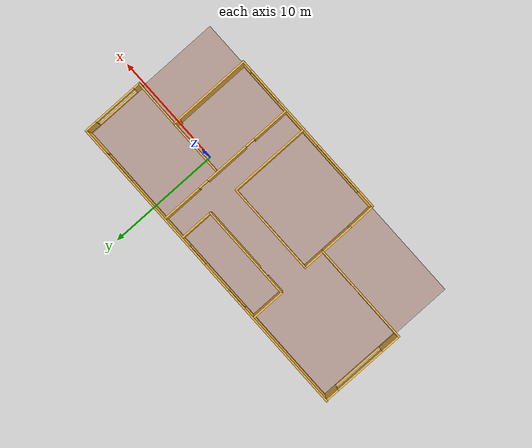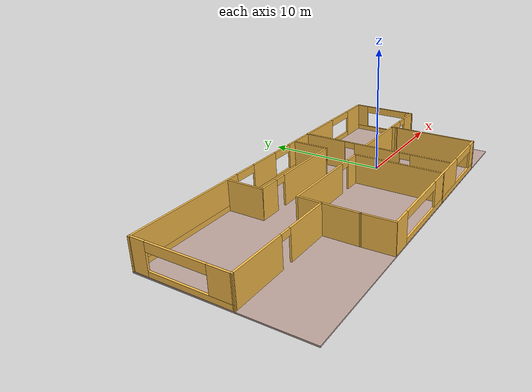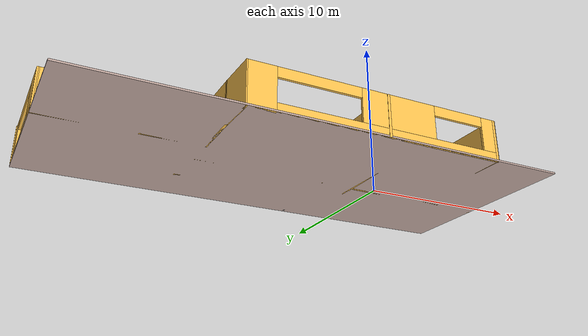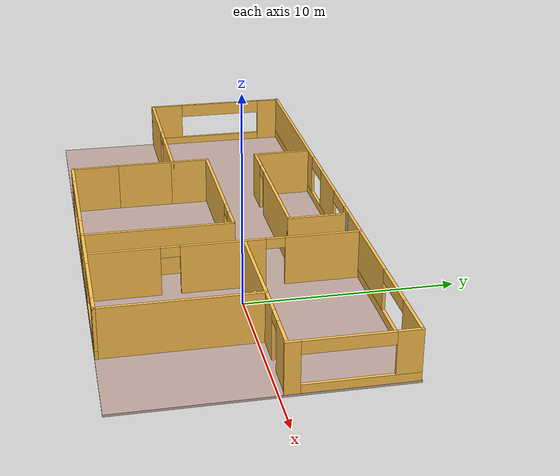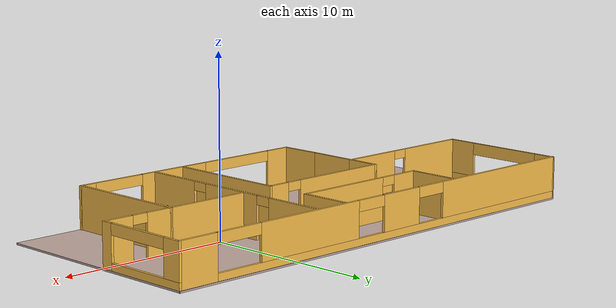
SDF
<?xml version='1.0'?>
<sdf version='1.6'>
  <model name='Untitled'>
    <pose frame=''>-6.29296 -0.528199 0 0 -0 0</pose>
    <link name='Floor_0'>
      <collision name='Floor_0_Collision'>
        <geometry>
          <box>
            <size>28.305 12.9233 0.1</size>
          </box>
        </geometry>
        <pose frame=''>0 0 0.05 0 -0 0</pose>
      </collision>
      <visual name='Floor_0_Visual'>
        <pose frame=''>0 0 0.05 0 -0 0</pose>
        <geometry>
          <box>
            <size>28.305 12.9233 0.1</size>
          </box>
        </geometry>
        <material>
          <script>
            <uri>file://media/materials/scripts/gazebo.material</uri>
            <name>Gazebo/Grey</name>
          </script>
          <ambient>0.760784 0.662745 0.627451 1</ambient>
        </material>
        <meta>
          <layer>0</layer>
        </meta>
      </visual>
      <pose frame=''>0 3.6e-05 0 0 -0 0</pose>
    </link>
    <link name='Wall_46'>
      <pose frame=''>2.42069 -6.37368 0 0 -0 0</pose>
      <visual name='Wall_46_Visual_0'>
        <pose frame=''>-6.82393 0 1.25 0 -0 0</pose>
        <geometry>
          <box>
            <size>1.60214 0.15 2.5</size>
          </box>
        </geometry>
        <material>
          <script>
            <uri>file://media/materials/scripts/gazebo.material</uri>
            <name>Gazebo/Grey</name>
          </script>
          <ambient>1 0.764706 0.305882 1</ambient>
        </material>
        <meta>
          <layer>0</layer>
        </meta>
      </visual>
      <collision name='Wall_46_Collision_0'>
        <geometry>
          <box>
            <size>1.60214 0.15 2.5</size>
          </box>
        </geometry>
        <pose frame=''>-6.82393 0 1.25 0 -0 0</pose>
      </collision>
      <visual name='Wall_46_Visual_1'>
        <pose frame=''>0.801071 0 0.25 0 -0 0</pose>
        <geometry>
          <box>
            <size>13.6479 0.15 0.5</size>
          </box>
        </geometry>
        <material>
          <script>
            <uri>file://media/materials/scripts/gazebo.material</uri>
            <name>Gazebo/Grey</name>
          </script>
          <ambient>1 0.764706 0.305882 1</ambient>
        </material>
        <meta>
          <layer>0</layer>
        </meta>
      </visual>
      <collision name='Wall_46_Collision_1'>
        <geometry>
          <box>
            <size>13.6479 0.15 0.5</size>
          </box>
        </geometry>
        <pose frame=''>0.801071 0 0.25 0 -0 0</pose>
      </collision>
      <visual name='Wall_46_Visual_2'>
        <pose frame=''>1.10585 0 1.5 0 -0 0</pose>
        <geometry>
          <box>
            <size>4.57742 0.15 2</size>
          </box>
        </geometry>
        <material>
          <script>
            <uri>file://media/materials/scripts/gazebo.material</uri>
            <name>Gazebo/Grey</name>
          </script>
          <ambient>1 0.764706 0.305882 1</ambient>
        </material>
        <meta>
          <layer>0</layer>
        </meta>
      </visual>
      <collision name='Wall_46_Collision_2'>
        <geometry>
          <box>
            <size>4.57742 0.15 2</size>
          </box>
        </geometry>
        <pose frame=''>1.10585 0 1.5 0 -0 0</pose>
      </collision>
      <visual name='Wall_46_Visual_3'>
        <pose frame=''>7.11928 0 1.5 0 -0 0</pose>
        <geometry>
          <box>
            <size>1.01143 0.15 2</size>
          </box>
        </geometry>
        <material>
          <script>
            <uri>file://media/materials/scripts/gazebo.material</uri>
            <name>Gazebo/Grey</name>
          </script>
          <ambient>1 0.764706 0.305882 1</ambient>
        </material>
        <meta>
          <layer>0</layer>
        </meta>
      </visual>
      <collision name='Wall_46_Collision_3'>
        <geometry>
          <box>
            <size>1.01143 0.15 2</size>
          </box>
        </geometry>
        <pose frame=''>7.11928 0 1.5 0 -0 0</pose>
      </collision>
      <visual name='Wall_46_Visual_4'>
        <pose frame=''>-3.60286 0 2.2 0 -0 0</pose>
        <geometry>
          <box>
            <size>4.84 0.15 0.6</size>
          </box>
        </geometry>
        <material>
          <script>
            <uri>file://media/materials/scripts/gazebo.material</uri>
            <name>Gazebo/Grey</name>
          </script>
          <ambient>1 0.764706 0.305882 1</ambient>
        </material>
        <meta>
          <layer>0</layer>
        </meta>
      </visual>
      <collision name='Wall_46_Collision_4'>
        <geometry>
          <box>
            <size>4.84 0.15 0.6</size>
          </box>
        </geometry>
        <pose frame=''>-3.60286 0 2.2 0 -0 0</pose>
      </collision>
      <visual name='Wall_46_Visual_5'>
        <pose frame=''>5.00407 0 2.2 0 -0 0</pose>
        <geometry>
          <box>
            <size>3.219 0.15 0.6</size>
          </box>
        </geometry>
        <material>
          <script>
            <uri>file://media/materials/scripts/gazebo.material</uri>
            <name>Gazebo/Grey</name>
          </script>
          <ambient>1 0.764706 0.305882 1</ambient>
        </material>
        <meta>
          <layer>0</layer>
        </meta>
      </visual>
      <collision name='Wall_46_Collision_5'>
        <geometry>
          <box>
            <size>3.219 0.15 0.6</size>
          </box>
        </geometry>
        <pose frame=''>5.00407 0 2.2 0 -0 0</pose>
      </collision>
    </link>
    <link name='Wall_47'>
      <collision name='Wall_47_Collision'>
        <geometry>
          <box>
            <size>7.38746 0.15 2.5</size>
          </box>
        </geometry>
        <pose frame=''>0 0 1.25 0 -0 0</pose>
      </collision>
      <visual name='Wall_47_Visual'>
        <pose frame=''>0 0 1.25 0 -0 0</pose>
        <geometry>
          <box>
            <size>7.38746 0.15 2.5</size>
          </box>
        </geometry>
        <material>
          <script>
            <uri>file://media/materials/scripts/gazebo.material</uri>
            <name>Gazebo/Grey</name>
          </script>
          <ambient>1 0.764706 0.305882 1</ambient>
        </material>
        <meta>
          <layer>0</layer>
        </meta>
      </visual>
      <pose frame=''>9.92644 -2.75503 0 0 -0 1.57184</pose>
    </link>
    <link name='Wall_48'>
      <pose frame=''>11.9768 0.843396 0 0 0 -0.009847</pose>
      <visual name='Wall_48_Visual_0'>
        <pose frame=''>-1.31659 0 1.25 0 -0 0</pose>
        <geometry>
          <box>
            <size>1.62527 0.15 2.5</size>
          </box>
        </geometry>
        <material>
          <script>
            <uri>file://media/materials/scripts/gazebo.material</uri>
            <name>Gazebo/Grey</name>
          </script>
          <ambient>1 0.764706 0.305882 1</ambient>
        </material>
        <meta>
          <layer>0</layer>
        </meta>
      </visual>
      <collision name='Wall_48_Collision_0'>
        <geometry>
          <box>
            <size>1.62527 0.15 2.5</size>
          </box>
        </geometry>
        <pose frame=''>-1.31659 0 1.25 0 -0 0</pose>
      </collision>
      <visual name='Wall_48_Visual_1'>
        <pose frame=''>1.26263 0 1.25 0 -0 0</pose>
        <geometry>
          <box>
            <size>1.73318 0.15 2.5</size>
          </box>
        </geometry>
        <material>
          <script>
            <uri>file://media/materials/scripts/gazebo.material</uri>
            <name>Gazebo/Grey</name>
          </script>
          <ambient>1 0.764706 0.305882 1</ambient>
        </material>
        <meta>
          <layer>0</layer>
        </meta>
      </visual>
      <collision name='Wall_48_Collision_1'>
        <geometry>
          <box>
            <size>1.73318 0.15 2.5</size>
          </box>
        </geometry>
        <pose frame=''>1.26263 0 1.25 0 -0 0</pose>
      </collision>
      <visual name='Wall_48_Visual_2'>
        <pose frame=''>-0.053953 0 2.25 0 -0 0</pose>
        <geometry>
          <box>
            <size>0.9 0.15 0.5</size>
          </box>
        </geometry>
        <material>
          <script>
            <uri>file://media/materials/scripts/gazebo.material</uri>
            <name>Gazebo/Grey</name>
          </script>
          <ambient>1 0.764706 0.305882 1</ambient>
        </material>
        <meta>
          <layer>0</layer>
        </meta>
      </visual>
      <collision name='Wall_48_Collision_2'>
        <geometry>
          <box>
            <size>0.9 0.15 0.5</size>
          </box>
        </geometry>
        <pose frame=''>-0.053953 0 2.25 0 -0 0</pose>
      </collision>
    </link>
    <link name='Wall_49'>
      <pose frame=''>14.0744 3.56455 0 0 -0 1.56971</pose>
      <visual name='Wall_49_Visual_0'>
        <pose frame=''>-2.51549 0 1.25 0 -0 0</pose>
        <geometry>
          <box>
            <size>0.682829 0.15 2.5</size>
          </box>
        </geometry>
        <material>
          <script>
            <uri>file://media/materials/scripts/gazebo.material</uri>
            <name>Gazebo/Grey</name>
          </script>
          <ambient>1 0.764706 0.305882 1</ambient>
        </material>
        <meta>
          <layer>0</layer>
        </meta>
      </visual>
      <collision name='Wall_49_Collision_0'>
        <geometry>
          <box>
            <size>0.682829 0.15 2.5</size>
          </box>
        </geometry>
        <pose frame=''>-2.51549 0 1.25 0 -0 0</pose>
      </collision>
      <visual name='Wall_49_Visual_1'>
        <pose frame=''>0.341415 0 0.25 0 -0 0</pose>
        <geometry>
          <box>
            <size>5.03099 0.15 0.5</size>
          </box>
        </geometry>
        <material>
          <script>
            <uri>file://media/materials/scripts/gazebo.material</uri>
            <name>Gazebo/Grey</name>
          </script>
          <ambient>1 0.764706 0.305882 1</ambient>
        </material>
        <meta>
          <layer>0</layer>
        </meta>
      </visual>
      <collision name='Wall_49_Collision_1'>
        <geometry>
          <box>
            <size>5.03099 0.15 0.5</size>
          </box>
        </geometry>
        <pose frame=''>0.341415 0 0.25 0 -0 0</pose>
      </collision>
      <visual name='Wall_49_Visual_2'>
        <pose frame=''>2.29942 0 1.5 0 -0 0</pose>
        <geometry>
          <box>
            <size>1.11498 0.15 2</size>
          </box>
        </geometry>
        <material>
          <script>
            <uri>file://media/materials/scripts/gazebo.material</uri>
            <name>Gazebo/Grey</name>
          </script>
          <ambient>1 0.764706 0.305882 1</ambient>
        </material>
        <meta>
          <layer>0</layer>
        </meta>
      </visual>
      <collision name='Wall_49_Collision_2'>
        <geometry>
          <box>
            <size>1.11498 0.15 2</size>
          </box>
        </geometry>
        <pose frame=''>2.29942 0 1.5 0 -0 0</pose>
      </collision>
      <visual name='Wall_49_Visual_3'>
        <pose frame=''>-0.216078 0 2.2 0 -0 0</pose>
        <geometry>
          <box>
            <size>3.916 0.15 0.6</size>
          </box>
        </geometry>
        <material>
          <script>
            <uri>file://media/materials/scripts/gazebo.material</uri>
            <name>Gazebo/Grey</name>
          </script>
          <ambient>1 0.764706 0.305882 1</ambient>
        </material>
        <meta>
          <layer>0</layer>
        </meta>
      </visual>
      <collision name='Wall_49_Collision_3'>
        <geometry>
          <box>
            <size>3.916 0.15 0.6</size>
          </box>
        </geometry>
        <pose frame=''>-0.216078 0 2.2 0 -0 0</pose>
      </collision>
    </link>
    <link name='Wall_50'>
      <pose frame=''>-0.023072 6.3664 0 0 -0 3.14017</pose>
      <visual name='Wall_50_Visual_0'>
        <pose frame=''>-12.9423 0 1.25 0 -0 0</pose>
        <geometry>
          <box>
            <size>2.37332 0.15 2.5</size>
          </box>
        </geometry>
        <material>
          <script>
            <uri>file://media/materials/scripts/gazebo.material</uri>
            <name>Gazebo/Grey</name>
          </script>
          <ambient>1 0.764706 0.305882 1</ambient>
        </material>
        <meta>
          <layer>0</layer>
        </meta>
      </visual>
      <collision name='Wall_50_Collision_0'>
        <geometry>
          <box>
            <size>2.37332 0.15 2.5</size>
          </box>
        </geometry>
        <pose frame=''>-12.9423 0 1.25 0 -0 0</pose>
      </collision>
      <visual name='Wall_50_Visual_1'>
        <pose frame=''>1.18666 0 0.25 0 -0 0</pose>
        <geometry>
          <box>
            <size>25.8846 0.15 0.5</size>
          </box>
        </geometry>
        <material>
          <script>
            <uri>file://media/materials/scripts/gazebo.material</uri>
            <name>Gazebo/Grey</name>
          </script>
          <ambient>1 0.764706 0.305882 1</ambient>
        </material>
        <meta>
          <layer>0</layer>
        </meta>
      </visual>
      <collision name='Wall_50_Collision_1'>
        <geometry>
          <box>
            <size>25.8846 0.15 0.5</size>
          </box>
        </geometry>
        <pose frame=''>1.18666 0 0.25 0 -0 0</pose>
      </collision>
      <visual name='Wall_50_Visual_2'>
        <pose frame=''>-5.48965 0 1.5 0 -0 0</pose>
        <geometry>
          <box>
            <size>6.83803 0.15 2</size>
          </box>
        </geometry>
        <material>
          <script>
            <uri>file://media/materials/scripts/gazebo.material</uri>
            <name>Gazebo/Grey</name>
          </script>
          <ambient>1 0.764706 0.305882 1</ambient>
        </material>
        <meta>
          <layer>0</layer>
        </meta>
      </visual>
      <collision name='Wall_50_Collision_2'>
        <geometry>
          <box>
            <size>6.83803 0.15 2</size>
          </box>
        </geometry>
        <pose frame=''>-5.48965 0 1.5 0 -0 0</pose>
      </collision>
      <visual name='Wall_50_Visual_3'>
        <pose frame=''>1.1823 0 1.5 0 -0 0</pose>
        <geometry>
          <box>
            <size>2.70586 0.15 2</size>
          </box>
        </geometry>
        <material>
          <script>
            <uri>file://media/materials/scripts/gazebo.material</uri>
            <name>Gazebo/Grey</name>
          </script>
          <ambient>1 0.764706 0.305882 1</ambient>
        </material>
        <meta>
          <layer>0</layer>
        </meta>
      </visual>
      <collision name='Wall_50_Collision_3'>
        <geometry>
          <box>
            <size>2.70586 0.15 2</size>
          </box>
        </geometry>
        <pose frame=''>1.1823 0 1.5 0 -0 0</pose>
      </collision>
      <visual name='Wall_50_Visual_4'>
        <pose frame=''>9.2821 0 1.5 0 -0 0</pose>
        <geometry>
          <box>
            <size>9.69375 0.15 2</size>
          </box>
        </geometry>
        <material>
          <script>
            <uri>file://media/materials/scripts/gazebo.material</uri>
            <name>Gazebo/Grey</name>
          </script>
          <ambient>1 0.764706 0.305882 1</ambient>
        </material>
        <meta>
          <layer>0</layer>
        </meta>
      </visual>
      <collision name='Wall_50_Collision_4'>
        <geometry>
          <box>
            <size>9.69375 0.15 2</size>
          </box>
        </geometry>
        <pose frame=''>9.2821 0 1.5 0 -0 0</pose>
      </collision>
      <visual name='Wall_50_Visual_5'>
        <pose frame=''>-10.3322 0 2.2 0 -0 0</pose>
        <geometry>
          <box>
            <size>2.847 0.15 0.6</size>
          </box>
        </geometry>
        <material>
          <script>
            <uri>file://media/materials/scripts/gazebo.material</uri>
            <name>Gazebo/Grey</name>
          </script>
          <ambient>1 0.764706 0.305882 1</ambient>
        </material>
        <meta>
          <layer>0</layer>
        </meta>
      </visual>
      <collision name='Wall_50_Collision_5'>
        <geometry>
          <box>
            <size>2.847 0.15 0.6</size>
          </box>
        </geometry>
        <pose frame=''>-10.3322 0 2.2 0 -0 0</pose>
      </collision>
      <visual name='Wall_50_Visual_6'>
        <pose frame=''>-1.12063 0 2.2 0 -0 0</pose>
        <geometry>
          <box>
            <size>1.9 0.15 0.6</size>
          </box>
        </geometry>
        <material>
          <script>
            <uri>file://media/materials/scripts/gazebo.material</uri>
            <name>Gazebo/Grey</name>
          </script>
          <ambient>1 0.764706 0.305882 1</ambient>
        </material>
        <meta>
          <layer>0</layer>
        </meta>
      </visual>
      <collision name='Wall_50_Collision_6'>
        <geometry>
          <box>
            <size>1.9 0.15 0.6</size>
          </box>
        </geometry>
        <pose frame=''>-1.12063 0 2.2 0 -0 0</pose>
      </collision>
      <visual name='Wall_50_Visual_7'>
        <pose frame=''>3.48523 0 2.2 0 -0 0</pose>
        <geometry>
          <box>
            <size>1.9 0.15 0.6</size>
          </box>
        </geometry>
        <material>
          <script>
            <uri>file://media/materials/scripts/gazebo.material</uri>
            <name>Gazebo/Grey</name>
          </script>
          <ambient>1 0.764706 0.305882 1</ambient>
        </material>
        <meta>
          <layer>0</layer>
        </meta>
      </visual>
      <collision name='Wall_50_Collision_7'>
        <geometry>
          <box>
            <size>1.9 0.15 0.6</size>
          </box>
        </geometry>
        <pose frame=''>3.48523 0 2.2 0 -0 0</pose>
      </collision>
    </link>
    <link name='Wall_51'>
      <pose frame=''>-14.0538 2.6248 0 0 0 -1.57698</pose>
      <visual name='Wall_51_Visual_0'>
        <pose frame=''>-3.19315 0 1.25 0 -0 0</pose>
        <geometry>
          <box>
            <size>1.28692 0.15 2.5</size>
          </box>
        </geometry>
        <material>
          <script>
            <uri>file://media/materials/scripts/gazebo.material</uri>
            <name>Gazebo/Grey</name>
          </script>
          <ambient>1 0.764706 0.305882 1</ambient>
        </material>
        <meta>
          <layer>0</layer>
        </meta>
      </visual>
      <collision name='Wall_51_Collision_0'>
        <geometry>
          <box>
            <size>1.28692 0.15 2.5</size>
          </box>
        </geometry>
        <pose frame=''>-3.19315 0 1.25 0 -0 0</pose>
      </collision>
      <visual name='Wall_51_Visual_1'>
        <pose frame=''>0.64346 0 0.25 0 -0 0</pose>
        <geometry>
          <box>
            <size>6.38629 0.15 0.5</size>
          </box>
        </geometry>
        <material>
          <script>
            <uri>file://media/materials/scripts/gazebo.material</uri>
            <name>Gazebo/Grey</name>
          </script>
          <ambient>1 0.764706 0.305882 1</ambient>
        </material>
        <meta>
          <layer>0</layer>
        </meta>
      </visual>
      <collision name='Wall_51_Collision_1'>
        <geometry>
          <box>
            <size>6.38629 0.15 0.5</size>
          </box>
        </geometry>
        <pose frame=''>0.64346 0 0.25 0 -0 0</pose>
      </collision>
      <visual name='Wall_51_Visual_2'>
        <pose frame=''>2.93846 0 1.5 0 -0 0</pose>
        <geometry>
          <box>
            <size>1.79629 0.15 2</size>
          </box>
        </geometry>
        <material>
          <script>
            <uri>file://media/materials/scripts/gazebo.material</uri>
            <name>Gazebo/Grey</name>
          </script>
          <ambient>1 0.764706 0.305882 1</ambient>
        </material>
        <meta>
          <layer>0</layer>
        </meta>
      </visual>
      <collision name='Wall_51_Collision_2'>
        <geometry>
          <box>
            <size>1.79629 0.15 2</size>
          </box>
        </geometry>
        <pose frame=''>2.93846 0 1.5 0 -0 0</pose>
      </collision>
      <visual name='Wall_51_Visual_3'>
        <pose frame=''>-0.254685 0 2.15 0 -0 0</pose>
        <geometry>
          <box>
            <size>4.59 0.15 0.7</size>
          </box>
        </geometry>
        <material>
          <script>
            <uri>file://media/materials/scripts/gazebo.material</uri>
            <name>Gazebo/Grey</name>
          </script>
          <ambient>1 0.764706 0.305882 1</ambient>
        </material>
        <meta>
          <layer>0</layer>
        </meta>
      </visual>
      <collision name='Wall_51_Collision_3'>
        <geometry>
          <box>
            <size>4.59 0.15 0.7</size>
          </box>
        </geometry>
        <pose frame=''>-0.254685 0 2.15 0 -0 0</pose>
      </collision>
    </link>
    <link name='Wall_63'>
      <collision name='Wall_63_Collision'>
        <geometry>
          <box>
            <size>0.225572 0.15 2.5</size>
          </box>
        </geometry>
        <pose frame=''>0 0 1.25 0 -0 0</pose>
      </collision>
      <visual name='Wall_63_Visual'>
        <pose frame=''>0 0 1.25 0 -0 0</pose>
        <geometry>
          <box>
            <size>0.225572 0.15 2.5</size>
          </box>
        </geometry>
        <material>
          <script>
            <uri>file://media/materials/scripts/gazebo.material</uri>
            <name>Gazebo/Grey</name>
          </script>
          <ambient>1 0.764706 0.305882 1</ambient>
        </material>
        <meta>
          <layer>0</layer>
        </meta>
      </visual>
      <pose frame=''>9.84296 0.398199 0 0 -0 0</pose>
    </link>
    <link name='Wall_64'>
      <pose frame=''>-9.65203 -1.1368 0 0 -0 0</pose>
      <visual name='Wall_64_Visual_0'>
        <pose frame=''>-2.28737 0 1.25 0 -0 0</pose>
        <geometry>
          <box>
            <size>4.42526 0.15 2.5</size>
          </box>
        </geometry>
        <material>
          <script>
            <uri>file://media/materials/scripts/gazebo.material</uri>
            <name>Gazebo/Grey</name>
          </script>
          <ambient>1 0.764706 0.305882 1</ambient>
        </material>
        <meta>
          <layer>0</layer>
        </meta>
      </visual>
      <collision name='Wall_64_Collision_0'>
        <geometry>
          <box>
            <size>4.42526 0.15 2.5</size>
          </box>
        </geometry>
        <pose frame=''>-2.28737 0 1.25 0 -0 0</pose>
      </collision>
      <visual name='Wall_64_Visual_1'>
        <pose frame=''>2.66263 0 1.25 0 -0 0</pose>
        <geometry>
          <box>
            <size>3.67474 0.15 2.5</size>
          </box>
        </geometry>
        <material>
          <script>
            <uri>file://media/materials/scripts/gazebo.material</uri>
            <name>Gazebo/Grey</name>
          </script>
          <ambient>1 0.764706 0.305882 1</ambient>
        </material>
        <meta>
          <layer>0</layer>
        </meta>
      </visual>
      <collision name='Wall_64_Collision_1'>
        <geometry>
          <box>
            <size>3.67474 0.15 2.5</size>
          </box>
        </geometry>
        <pose frame=''>2.66263 0 1.25 0 -0 0</pose>
      </collision>
      <visual name='Wall_64_Visual_2'>
        <pose frame=''>0.375257 0 2.25 0 -0 0</pose>
        <geometry>
          <box>
            <size>0.9 0.15 0.5</size>
          </box>
        </geometry>
        <material>
          <script>
            <uri>file://media/materials/scripts/gazebo.material</uri>
            <name>Gazebo/Grey</name>
          </script>
          <ambient>1 0.764706 0.305882 1</ambient>
        </material>
        <meta>
          <layer>0</layer>
        </meta>
      </visual>
      <collision name='Wall_64_Collision_2'>
        <geometry>
          <box>
            <size>0.9 0.15 0.5</size>
          </box>
        </geometry>
        <pose frame=''>0.375257 0 2.25 0 -0 0</pose>
      </collision>
    </link>
    <link name='Wall_65'>
      <collision name='Wall_65_Collision'>
        <geometry>
          <box>
            <size>3 0.15 2.5</size>
          </box>
        </geometry>
        <pose frame=''>0 0 1.25 0 -0 0</pose>
      </collision>
      <visual name='Wall_65_Visual'>
        <pose frame=''>0 0 1.25 0 -0 0</pose>
        <geometry>
          <box>
            <size>3 0.15 2.5</size>
          </box>
        </geometry>
        <material>
          <script>
            <uri>file://media/materials/scripts/gazebo.material</uri>
            <name>Gazebo/Grey</name>
          </script>
          <ambient>1 0.764706 0.305882 1</ambient>
        </material>
        <meta>
          <layer>0</layer>
        </meta>
      </visual>
      <pose frame=''>-5.2272 -2.56159 0 0 0 -1.57091</pose>
    </link>
    <link name='Wall_66'>
      <collision name='Wall_66_Collision'>
        <geometry>
          <box>
            <size>2.538 0.15 2.5</size>
          </box>
        </geometry>
        <pose frame=''>0 0 1.25 0 -0 0</pose>
      </collision>
      <visual name='Wall_66_Visual'>
        <pose frame=''>0 0 1.25 0 -0 0</pose>
        <geometry>
          <box>
            <size>2.538 0.15 2.5</size>
          </box>
        </geometry>
        <material>
          <script>
            <uri>file://media/materials/scripts/gazebo.material</uri>
            <name>Gazebo/Grey</name>
          </script>
          <ambient>1 0.764706 0.305882 1</ambient>
        </material>
        <meta>
          <layer>0</layer>
        </meta>
      </visual>
      <pose frame=''>-5.19856 -5.18003 0 0 0 -1.54668</pose>
    </link>
    <link name='Wall_68'>
      <collision name='Wall_68_Collision'>
        <geometry>
          <box>
            <size>2 0.15 2.5</size>
          </box>
        </geometry>
        <pose frame=''>0 0 1.25 0 -0 0</pose>
      </collision>
      <visual name='Wall_68_Visual'>
        <pose frame=''>0 0 1.25 0 -0 0</pose>
        <geometry>
          <box>
            <size>2 0.15 2.5</size>
          </box>
        </geometry>
        <material>
          <script>
            <uri>file://media/materials/scripts/gazebo.material</uri>
            <name>Gazebo/Grey</name>
          </script>
          <ambient>1 0.764706 0.305882 1</ambient>
        </material>
        <meta>
          <layer>0</layer>
        </meta>
      </visual>
      <pose frame=''>-5.22703 -0.211801 0 0 -0 1.5708</pose>
    </link>
    <link name='Wall_69'>
      <pose frame=''>-1.17704 0.713199 0 0 -0 0</pose>
      <visual name='Wall_69_Visual_0'>
        <pose frame=''>-1.12238 0 1.25 0 -0 0</pose>
        <geometry>
          <box>
            <size>6.00524 0.15 2.5</size>
          </box>
        </geometry>
        <material>
          <script>
            <uri>file://media/materials/scripts/gazebo.material</uri>
            <name>Gazebo/Grey</name>
          </script>
          <ambient>1 0.764706 0.305882 1</ambient>
        </material>
        <meta>
          <layer>0</layer>
        </meta>
      </visual>
      <collision name='Wall_69_Collision_0'>
        <geometry>
          <box>
            <size>6.00524 0.15 2.5</size>
          </box>
        </geometry>
        <pose frame=''>-1.12238 0 1.25 0 -0 0</pose>
      </collision>
      <visual name='Wall_69_Visual_1'>
        <pose frame=''>3.45262 0 1.25 0 -0 0</pose>
        <geometry>
          <box>
            <size>1.34476 0.15 2.5</size>
          </box>
        </geometry>
        <material>
          <script>
            <uri>file://media/materials/scripts/gazebo.material</uri>
            <name>Gazebo/Grey</name>
          </script>
          <ambient>1 0.764706 0.305882 1</ambient>
        </material>
        <meta>
          <layer>0</layer>
        </meta>
      </visual>
      <collision name='Wall_69_Collision_1'>
        <geometry>
          <box>
            <size>1.34476 0.15 2.5</size>
          </box>
        </geometry>
        <pose frame=''>3.45262 0 1.25 0 -0 0</pose>
      </collision>
      <visual name='Wall_69_Visual_2'>
        <pose frame=''>2.33024 0 2.25 0 -0 0</pose>
        <geometry>
          <box>
            <size>0.9 0.15 0.5</size>
          </box>
        </geometry>
        <material>
          <script>
            <uri>file://media/materials/scripts/gazebo.material</uri>
            <name>Gazebo/Grey</name>
          </script>
          <ambient>1 0.764706 0.305882 1</ambient>
        </material>
        <meta>
          <layer>0</layer>
        </meta>
      </visual>
      <collision name='Wall_69_Collision_2'>
        <geometry>
          <box>
            <size>0.9 0.15 0.5</size>
          </box>
        </geometry>
        <pose frame=''>2.33024 0 2.25 0 -0 0</pose>
      </collision>
    </link>
    <link name='Wall_70'>
      <collision name='Wall_70_Collision'>
        <geometry>
          <box>
            <size>7.25 0.15 2.5</size>
          </box>
        </geometry>
        <pose frame=''>0 0 1.25 0 -0 0</pose>
      </collision>
      <visual name='Wall_70_Visual'>
        <pose frame=''>0 0 1.25 0 -0 0</pose>
        <geometry>
          <box>
            <size>7.25 0.15 2.5</size>
          </box>
        </geometry>
        <material>
          <script>
            <uri>file://media/materials/scripts/gazebo.material</uri>
            <name>Gazebo/Grey</name>
          </script>
          <ambient>1 0.764706 0.305882 1</ambient>
        </material>
        <meta>
          <layer>0</layer>
        </meta>
      </visual>
      <pose frame=''>2.87297 -2.8368 0 0 0 -1.5708</pose>
    </link>
    <link name='Wall_72'>
      <pose frame=''>4.88462 0.055804 0 0 -0 1.5708</pose>
      <visual name='Wall_72_Visual_0'>
        <pose frame=''>-4.71919 0 1.25 0 -0 0</pose>
        <geometry>
          <box>
            <size>3.31162 0.15 2.5</size>
          </box>
        </geometry>
        <material>
          <script>
            <uri>file://media/materials/scripts/gazebo.material</uri>
            <name>Gazebo/Grey</name>
          </script>
          <ambient>1 0.764706 0.305882 1</ambient>
        </material>
        <meta>
          <layer>0</layer>
        </meta>
      </visual>
      <collision name='Wall_72_Collision_0'>
        <geometry>
          <box>
            <size>3.31162 0.15 2.5</size>
          </box>
        </geometry>
        <pose frame=''>-4.71919 0 1.25 0 -0 0</pose>
      </collision>
      <visual name='Wall_72_Visual_1'>
        <pose frame=''>-0.177926 0 1.25 0 -0 0</pose>
        <geometry>
          <box>
            <size>3.97091 0.15 2.5</size>
          </box>
        </geometry>
        <material>
          <script>
            <uri>file://media/materials/scripts/gazebo.material</uri>
            <name>Gazebo/Grey</name>
          </script>
          <ambient>1 0.764706 0.305882 1</ambient>
        </material>
        <meta>
          <layer>0</layer>
        </meta>
      </visual>
      <collision name='Wall_72_Collision_1'>
        <geometry>
          <box>
            <size>3.97091 0.15 2.5</size>
          </box>
        </geometry>
        <pose frame=''>-0.177926 0 1.25 0 -0 0</pose>
      </collision>
      <visual name='Wall_72_Visual_2'>
        <pose frame=''>4.54126 0 1.25 0 -0 0</pose>
        <geometry>
          <box>
            <size>3.66747 0.15 2.5</size>
          </box>
        </geometry>
        <material>
          <script>
            <uri>file://media/materials/scripts/gazebo.material</uri>
            <name>Gazebo/Grey</name>
          </script>
          <ambient>1 0.764706 0.305882 1</ambient>
        </material>
        <meta>
          <layer>0</layer>
        </meta>
      </visual>
      <collision name='Wall_72_Collision_2'>
        <geometry>
          <box>
            <size>3.66747 0.15 2.5</size>
          </box>
        </geometry>
        <pose frame=''>4.54126 0 1.25 0 -0 0</pose>
      </collision>
      <visual name='Wall_72_Visual_3'>
        <pose frame=''>-2.61338 0 2.25 0 -0 0</pose>
        <geometry>
          <box>
            <size>0.9 0.15 0.5</size>
          </box>
        </geometry>
        <material>
          <script>
            <uri>file://media/materials/scripts/gazebo.material</uri>
            <name>Gazebo/Grey</name>
          </script>
          <ambient>1 0.764706 0.305882 1</ambient>
        </material>
        <meta>
          <layer>0</layer>
        </meta>
      </visual>
      <collision name='Wall_72_Collision_3'>
        <geometry>
          <box>
            <size>0.9 0.15 0.5</size>
          </box>
        </geometry>
        <pose frame=''>-2.61338 0 2.25 0 -0 0</pose>
      </collision>
      <visual name='Wall_72_Visual_4'>
        <pose frame=''>2.25753 0 2.25 0 -0 0</pose>
        <geometry>
          <box>
            <size>0.9 0.15 0.5</size>
          </box>
        </geometry>
        <material>
          <script>
            <uri>file://media/materials/scripts/gazebo.material</uri>
            <name>Gazebo/Grey</name>
          </script>
          <ambient>1 0.764706 0.305882 1</ambient>
        </material>
        <meta>
          <layer>0</layer>
        </meta>
      </visual>
      <collision name='Wall_72_Collision_4'>
        <geometry>
          <box>
            <size>0.9 0.15 0.5</size>
          </box>
        </geometry>
        <pose frame=''>2.25753 0 2.25 0 -0 0</pose>
      </collision>
    </link>
    <link name='Wall_74'>
      <collision name='Wall_74_Collision'>
        <geometry>
          <box>
            <size>3 0.15 2.5</size>
          </box>
        </geometry>
        <pose frame=''>0 0 1.25 0 -0 0</pose>
      </collision>
      <visual name='Wall_74_Visual'>
        <pose frame=''>0 0 1.25 0 -0 0</pose>
        <geometry>
          <box>
            <size>3 0.15 2.5</size>
          </box>
        </geometry>
        <material>
          <script>
            <uri>file://media/materials/scripts/gazebo.material</uri>
            <name>Gazebo/Grey</name>
          </script>
          <ambient>1 0.764706 0.305882 1</ambient>
        </material>
        <meta>
          <layer>0</layer>
        </meta>
      </visual>
      <pose frame=''>-5.46303 4.8192 0 0 0 -1.5708</pose>
    </link>
    <link name='Wall_75'>
      <pose frame=''>-1.30548 3.39399 0 0 0 -5e-05</pose>
      <visual name='Wall_75_Visual_0'>
        <pose frame=''>-3.37564 0 1.25 0 -0 0</pose>
        <geometry>
          <box>
            <size>1.71354 0.15 2.5</size>
          </box>
        </geometry>
        <material>
          <script>
            <uri>file://media/materials/scripts/gazebo.material</uri>
            <name>Gazebo/Grey</name>
          </script>
          <ambient>1 0.764706 0.305882 1</ambient>
        </material>
        <meta>
          <layer>0</layer>
        </meta>
      </visual>
      <collision name='Wall_75_Collision_0'>
        <geometry>
          <box>
            <size>1.71354 0.15 2.5</size>
          </box>
        </geometry>
        <pose frame=''>-3.37564 0 1.25 0 -0 0</pose>
      </collision>
      <visual name='Wall_75_Visual_1'>
        <pose frame=''>1.30677 0 1.25 0 -0 0</pose>
        <geometry>
          <box>
            <size>5.85128 0.15 2.5</size>
          </box>
        </geometry>
        <material>
          <script>
            <uri>file://media/materials/scripts/gazebo.material</uri>
            <name>Gazebo/Grey</name>
          </script>
          <ambient>1 0.764706 0.305882 1</ambient>
        </material>
        <meta>
          <layer>0</layer>
        </meta>
      </visual>
      <collision name='Wall_75_Collision_1'>
        <geometry>
          <box>
            <size>5.85128 0.15 2.5</size>
          </box>
        </geometry>
        <pose frame=''>1.30677 0 1.25 0 -0 0</pose>
      </collision>
      <visual name='Wall_75_Visual_2'>
        <pose frame=''>-2.06887 0 2.25 0 -0 0</pose>
        <geometry>
          <box>
            <size>0.9 0.15 0.5</size>
          </box>
        </geometry>
        <material>
          <script>
            <uri>file://media/materials/scripts/gazebo.material</uri>
            <name>Gazebo/Grey</name>
          </script>
          <ambient>1 0.764706 0.305882 1</ambient>
        </material>
        <meta>
          <layer>0</layer>
        </meta>
      </visual>
      <collision name='Wall_75_Collision_2'>
        <geometry>
          <box>
            <size>0.9 0.15 0.5</size>
          </box>
        </geometry>
        <pose frame=''>-2.06887 0 2.25 0 -0 0</pose>
      </collision>
    </link>
    <link name='Wall_76'>
      <collision name='Wall_76_Collision'>
        <geometry>
          <box>
            <size>3 0.15 2.5</size>
          </box>
        </geometry>
        <pose frame=''>0 0 1.25 0 -0 0</pose>
      </collision>
      <visual name='Wall_76_Visual'>
        <pose frame=''>0 0 1.25 0 -0 0</pose>
        <geometry>
          <box>
            <size>3 0.15 2.5</size>
          </box>
        </geometry>
        <material>
          <script>
            <uri>file://media/materials/scripts/gazebo.material</uri>
            <name>Gazebo/Grey</name>
          </script>
          <ambient>1 0.764706 0.305882 1</ambient>
        </material>
        <meta>
          <layer>0</layer>
        </meta>
      </visual>
      <pose frame=''>2.88725 4.81878 0 0 -0 1.5708</pose>
    </link>
    <link name='Wall_77'>
      <collision name='Wall_77_Collision'>
        <geometry>
          <box>
            <size>0.15 0.15 2.5</size>
          </box>
        </geometry>
        <pose frame=''>0 0 1.25 0 -0 0</pose>
      </collision>
      <visual name='Wall_77_Visual'>
        <pose frame=''>0 0 1.25 0 -0 0</pose>
        <geometry>
          <box>
            <size>0.15 0.15 2.5</size>
          </box>
        </geometry>
        <material>
          <script>
            <uri>file://media/materials/scripts/gazebo.material</uri>
            <name>Gazebo/Grey</name>
          </script>
          <ambient>1 1 1 1</ambient>
        </material>
        <meta>
          <layer>0</layer>
        </meta>
      </visual>
      <pose frame=''>2.88725 6.24378 0 0 -0 0</pose>
    </link>
    <link name='Wall_79'>
      <collision name='Wall_79_Collision'>
        <geometry>
          <box>
            <size>5 0.15 2.5</size>
          </box>
        </geometry>
        <pose frame=''>0 0 1.25 0 -0 0</pose>
      </collision>
      <visual name='Wall_79_Visual'>
        <pose frame=''>0 0 1.25 0 -0 0</pose>
        <geometry>
          <box>
            <size>5 0.15 2.5</size>
          </box>
        </geometry>
        <material>
          <script>
            <uri>file://media/materials/scripts/gazebo.material</uri>
            <name>Gazebo/Grey</name>
          </script>
          <ambient>1 0.764706 0.305882 1</ambient>
        </material>
        <meta>
          <layer>0</layer>
        </meta>
      </visual>
      <pose frame=''>7.49765 0.863624 0 0 -0 3.14159</pose>
    </link>
    <static>1</static>
  </model>
</sdf>
